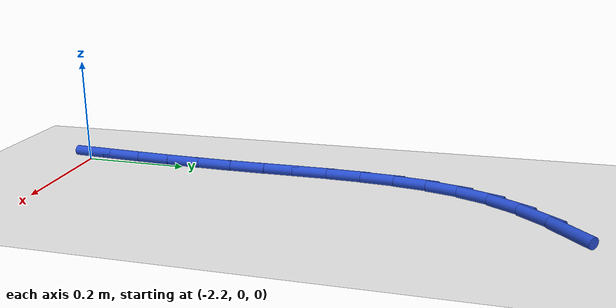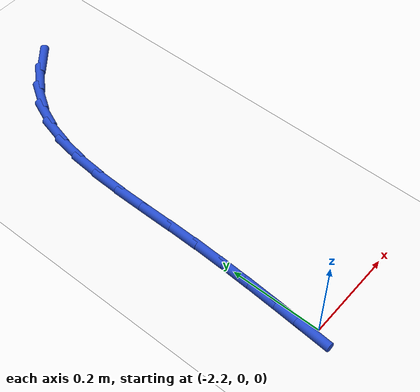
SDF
<sdf version="1.6">
 <world name="default">
  <model name="ground_plane">
   <static>1</static>
   <link name="link">
    <collision name="collision">
     <geometry><plane><normal>0 0 1</normal><size>100 100</size></plane></geometry>
     <surface><friction><ode><mu>100</mu><mu2>50</mu2></ode></friction></surface>
    </collision>
    <visual name="visual">
     <cast_shadows>0</cast_shadows>
     <geometry><plane><normal>0 0 1</normal><size>100 100</size></plane></geometry>
     <material>
      <script><uri>file://media/materials/scripts/gazebo.material</uri><name>Gazebo/WhiteGlow</name></script>
     </material>
    </visual>
   </link>
  </model>
  <model name="line">
   <link name="link_45">
    <pose>-2.0359347424208667 0.886845525212488 0.01 0 1.57 0.6873254593410588</pose>
    <collision name="collision">
     <geometry><cylinder><radius>0.01</radius><length>0.08</length></cylinder></geometry>
    </collision>
    <visual name="visual">
     <material>
      <script><name>Gazebo/Blue</name><uri>file://media/materials/scripts/gazebo.material</uri></script>
     </material>
     <geometry><cylinder><radius>0.01</radius><length>0.08</length></cylinder></geometry>
    </visual>
   </link>
   <link name="link_46">
    <pose>-2.0805349672106757 0.850235447882635 0.01 0 1.57 0.8261378542185314</pose>
    <collision name="collision">
     <geometry><cylinder><radius>0.01</radius><length>0.08</length></cylinder></geometry>
    </collision>
    <visual name="visual">
     <material>
      <script><name>Gazebo/Blue</name><uri>file://media/materials/scripts/gazebo.material</uri></script>
     </material>
     <geometry><cylinder><radius>0.01</radius><length>0.08</length></cylinder></geometry>
    </visual>
   </link>
   <link name="link_47">
    <pose>-2.118372940376541 0.8091816698533965 0.01 0 1.57 0.9973511736455991</pose>
    <collision name="collision">
     <geometry><cylinder><radius>0.01</radius><length>0.08</length></cylinder></geometry>
    </collision>
    <visual name="visual">
     <material>
      <script><name>Gazebo/Blue</name><uri>file://media/materials/scripts/gazebo.material</uri></script>
     </material>
     <geometry><cylinder><radius>0.01</radius><length>0.08</length></cylinder></geometry>
    </visual>
   </link>
   <link name="link_48">
    <pose>-2.148327331406347 0.7628011481775318 0.01 0 1.57 1.1736909764407064</pose>
    <collision name="collision">
     <geometry><cylinder><radius>0.01</radius><length>0.08</length></cylinder></geometry>
    </collision>
    <visual name="visual">
     <material>
      <script><name>Gazebo/Blue</name><uri>file://media/materials/scripts/gazebo.material</uri></script>
     </material>
     <geometry><cylinder><radius>0.01</radius><length>0.08</length></cylinder></geometry>
    </visual>
   </link>
   <link name="link_49">
    <pose>-2.1701274100377432 0.7108201210851273 0.01 0 1.57 1.3151393962364506</pose>
    <collision name="collision">
     <geometry><cylinder><radius>0.01</radius><length>0.08</length></cylinder></geometry>
    </collision>
    <visual name="visual">
     <material>
      <script><name>Gazebo/Blue</name><uri>file://media/materials/scripts/gazebo.material</uri></script>
     </material>
     <geometry><cylinder><radius>0.01</radius><length>0.08</length></cylinder></geometry>
    </visual>
   </link>
   <link name="link_50">
    <pose>-2.1849739273062596 0.6540188423180637 0.01 0 1.57 1.419820734037365</pose>
    <collision name="collision">
     <geometry><cylinder><radius>0.01</radius><length>0.08</length></cylinder></geometry>
    </collision>
    <visual name="visual">
     <material>
      <script><name>Gazebo/Blue</name><uri>file://media/materials/scripts/gazebo.material</uri></script>
     </material>
     <geometry><cylinder><radius>0.01</radius><length>0.08</length></cylinder></geometry>
    </visual>
   </link>
   <link name="link_51">
    <pose>-2.1942139623023973 0.5932823797534579 0.01 0 1.57 1.492871681290513</pose>
    <collision name="collision">
     <geometry><cylinder><radius>0.01</radius><length>0.08</length></cylinder></geometry>
    </collision>
    <visual name="visual">
     <material>
      <script><name>Gazebo/Blue</name><uri>file://media/materials/scripts/gazebo.material</uri></script>
     </material>
     <geometry><cylinder><radius>0.01</radius><length>0.08</length></cylinder></geometry>
    </visual>
   </link>
   <link name="link_52">
    <pose>-2.199194594116657 0.5294958012684245 0.01 0 1.57 1.539445620774843</pose>
    <collision name="collision">
     <geometry><cylinder><radius>0.01</radius><length>0.08</length></cylinder></geometry>
    </collision>
    <visual name="visual">
     <material>
      <script><name>Gazebo/Blue</name><uri>file://media/materials/scripts/gazebo.material</uri></script>
     </material>
     <geometry><cylinder><radius>0.01</radius><length>0.08</length></cylinder></geometry>
    </visual>
   </link>
   <link name="link_53">
    <pose>-2.201262901839539 0.4635441747400806 0.01 0 1.57 1.5633139333417034</pose>
    <collision name="collision">
     <geometry><cylinder><radius>0.01</radius><length>0.08</length></cylinder></geometry>
    </collision>
    <visual name="visual">
     <material>
      <script><name>Gazebo/Blue</name><uri>file://media/materials/scripts/gazebo.material</uri></script>
     </material>
     <geometry><cylinder><radius>0.01</radius><length>0.08</length></cylinder></geometry>
    </visual>
   </link>
   <link name="link_54">
    <pose>-2.201765964561545 0.3963125680455413 0.01 0 1.57 1.5665835544902968</pose>
    <collision name="collision">
     <geometry><cylinder><radius>0.01</radius><length>0.08</length></cylinder></geometry>
    </collision>
    <visual name="visual">
     <material>
      <script><name>Gazebo/Blue</name><uri>file://media/materials/scripts/gazebo.material</uri></script>
     </material>
     <geometry><cylinder><radius>0.01</radius><length>0.08</length></cylinder></geometry>
    </visual>
   </link>
   <link name="link_55">
    <pose>-2.202050861373175 0.3286860490619233 0.01 0 1.57 1.550988244555359</pose>
    <collision name="collision">
     <geometry><cylinder><radius>0.01</radius><length>0.08</length></cylinder></geometry>
    </collision>
    <visual name="visual">
     <material>
      <script><name>Gazebo/Blue</name><uri>file://media/materials/scripts/gazebo.material</uri></script>
     </material>
     <geometry><cylinder><radius>0.01</radius><length>0.08</length></cylinder></geometry>
    </visual>
   </link>
   <link name="link_56">
    <pose>-2.2033817700848863 0.261504651797029 0.01 0 1.57 1.5306112284699152</pose>
    <collision name="collision">
     <geometry><cylinder><radius>0.01</radius><length>0.08</length></cylinder></geometry>
    </collision>
    <visual name="visual">
     <material>
      <script><name>Gazebo/Blue</name><uri>file://media/materials/scripts/gazebo.material</uri></script>
     </material>
     <geometry><cylinder><radius>0.01</radius><length>0.08</length></cylinder></geometry>
    </visual>
   </link>
   <link name="link_57">
    <pose>-2.2060524387162372 0.19508125062546017 0.01 0 1.57 1.5149152902435452</pose>
    <collision name="collision">
     <geometry><cylinder><radius>0.01</radius><length>0.08</length></cylinder></geometry>
    </collision>
    <visual name="visual">
     <material>
      <script><name>Gazebo/Blue</name><uri>file://media/materials/scripts/gazebo.material</uri></script>
     </material>
     <geometry><cylinder><radius>0.01</radius><length>0.08</length></cylinder></geometry>
    </visual>
   </link>
   <link name="link_58">
    <pose>-2.209727334221781 0.1293868800705242 0.01 0 1.57 1.5042340143062232</pose>
    <collision name="collision">
     <geometry><cylinder><radius>0.01</radius><length>0.08</length></cylinder></geometry>
    </collision>
    <visual name="visual">
     <material>
      <script><name>Gazebo/Blue</name><uri>file://media/materials/scripts/gazebo.material</uri></script>
     </material>
     <geometry><cylinder><radius>0.01</radius><length>0.08</length></cylinder></geometry>
    </visual>
   </link>
   <link name="link_59">
    <pose>-2.214060290950049 0.06438679878102471 0.01 0 1.57 1.4987296513481385</pose>
    <collision name="collision">
     <geometry><cylinder><radius>0.01</radius><length>0.08</length></cylinder></geometry>
    </collision>
    <visual name="visual">
     <material>
      <script><name>Gazebo/Blue</name><uri>file://media/materials/scripts/gazebo.material</uri></script>
     </material>
     <geometry><cylinder><radius>0.01</radius><length>0.08</length></cylinder></geometry>
    </visual>
   </link>
   <link name="link_60">
    <pose>-2.218705143249575 4.626540576315244e-05 0.01 0 1.57 1.49856047090544</pose>
    <collision name="collision">
     <geometry><cylinder><radius>0.01</radius><length>0.08</length></cylinder></geometry>
    </collision>
    <visual name="visual">
     <material>
      <script><name>Gazebo/Blue</name><uri>file://media/materials/scripts/gazebo.material</uri></script>
     </material>
     <geometry><cylinder><radius>0.01</radius><length>0.08</length></cylinder></geometry>
    </visual>
   </link>
  </model>
 </world>
</sdf>
